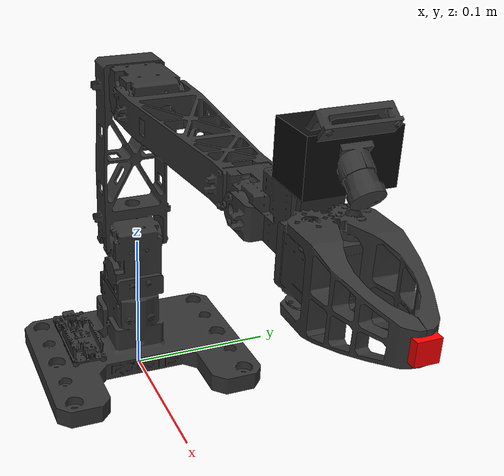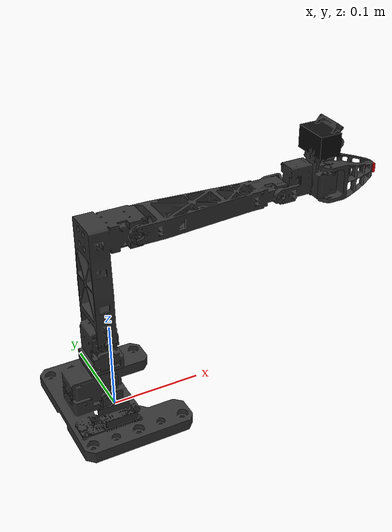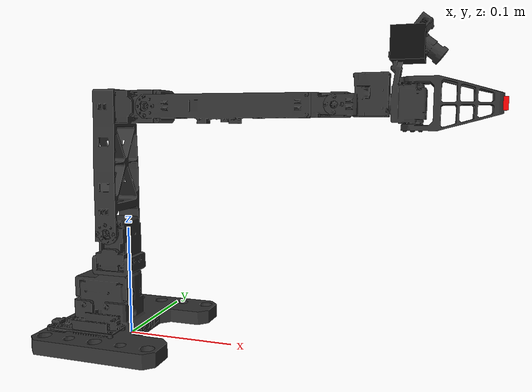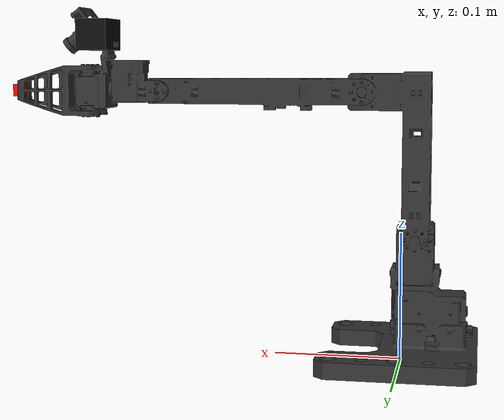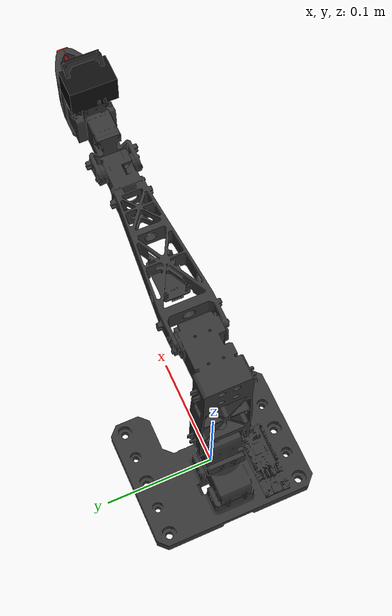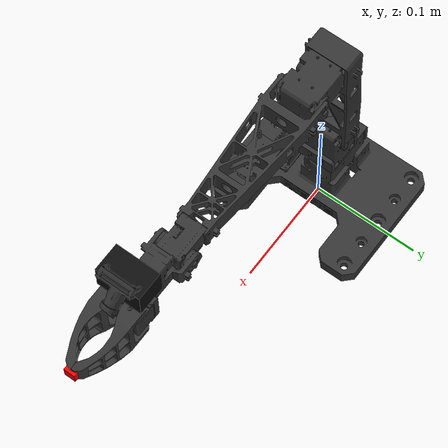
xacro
<?xml version="1.0"?>
<robot name="omx_f_with_wrist_camera" xmlns:xacro="http://www.ros.org/wiki/xacro">
  <!-- Keep the upstream OMX-F model intact and extend it only for simulation. -->
  <xacro:include filename="$(find open_manipulator_description)/urdf/omx_f/omx_f.urdf.xacro"/>

  <joint name="wrist_camera_joint" type="fixed">
    <parent link="link5"/>
    <child link="wrist_camera_link"/>
    <origin xyz="0.025 0 0.045" rpy="0 0 0"/>
  </joint>

  <link name="wrist_camera_link">
    <inertial>
      <mass value="0.02"/>
      <origin xyz="0 0 0" rpy="0 0 0"/>
      <inertia ixx="0.00001" ixy="0" ixz="0" iyy="0.00001" iyz="0" izz="0.00001"/>
    </inertial>
    <visual>
      <geometry><box size="0.025 0.04 0.025"/></geometry>
      <material name="camera_black"><color rgba="0.05 0.05 0.05 1"/></material>
    </visual>
  </link>

  <gazebo reference="wrist_camera_link">
    <sensor name="wrist_camera" type="camera">
      <always_on>true</always_on>
      <update_rate>30</update_rate>
      <topic>/omx_f/wrist_camera/image_raw</topic>
      <camera>
        <horizontal_fov>1.0472</horizontal_fov>
        <image>
          <width>640</width>
          <height>480</height>
          <format>R8G8B8</format>
        </image>
        <clip><near>0.02</near><far>5.0</far></clip>
      </camera>
    </sensor>
  </gazebo>
</robot>

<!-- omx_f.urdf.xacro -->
<robot name="omx_f" xmlns:xacro="http://www.ros.org/wiki/xacro">
  <xacro:arg name="prefix" default="" />
  <xacro:arg name="use_sim" default="false" />
  <xacro:arg name="use_mock_hardware" default="false" />
  <xacro:arg name="mock_sensor_commands" default="false" />
  <xacro:arg name="config_type" default="omx_f" />
  <xacro:arg name="ros2_control_type" default="omx_f" />
  <xacro:arg name="port_name" default="/dev/ttyACM1" />

  <xacro:include filename="$(find open_manipulator_description)/gazebo/omx_f.gazebo.xacro" />

  <xacro:include filename="$(find open_manipulator_description)/urdf/omx_f/omx_f_arm.urdf.xacro" />

  <xacro:include filename="$(find open_manipulator_description)/ros2_control/$(arg ros2_control_type).ros2_control.xacro" />

  <link name="world"/>

  <joint name="$(arg prefix)world_fixed" type="fixed">
    <parent link="world"/>
    <child link="$(arg prefix)link0"/>
    <origin xyz="0.0 0.0 0.0" rpy="0 0 0"/>
  </joint>

  <joint name="$(arg prefix)end_effector_joint" type="fixed">
    <parent link="$(arg prefix)link5"/>
    <child link="$(arg prefix)end_effector_link"/>
    <origin xyz="0.09193 -0.0016 0" rpy="0 0 0"/>
  </joint>

  <link name="$(arg prefix)end_effector_link">
    <visual>
      <origin xyz="0 0 0" rpy="0 0 0"/>
      <geometry>
        <box size="0.01 0.01 0.01" />
      </geometry>
      <material name="red">
        <color rgba="1.0 0.0 0.0 1"/>
      </material>
    </visual>
  </link>

  <xacro:omx_f prefix="$(arg prefix)" use_sim="$(arg use_sim)" />
  <xacro:omx_f_gazebo prefix="$(arg prefix)" />

  <xacro:omx_f_system
    name="OMXFSystem" prefix="$(arg prefix)" use_sim="$(arg use_sim)"
    use_mock_hardware="$(arg use_mock_hardware)"
    mock_sensor_commands="$(arg mock_sensor_commands)"
    port_name="$(arg port_name)"/>

  <gazebo>
    <plugin filename="gz_ros2_control-system" name="gz_ros2_control::GazeboSimROS2ControlPlugin">
      <parameters>$(find open_manipulator_bringup)/config/$(arg config_type)/hardware_controller_manager.yaml</parameters>
    </plugin>
  </gazebo>

</robot>

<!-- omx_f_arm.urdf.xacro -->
<robot xmlns:xacro="http://www.ros.org/wiki/xacro">
   <xacro:macro name="omx_f" params="prefix use_sim:=false">
   <xacro:property name="meshes_file_direction" value="package://open_manipulator_description/meshes/omx_f" />
      <link name="${prefix}link0" >
         <visual>
            <origin xyz="0 0 0" rpy="0 0 0" />
            <geometry>
               <mesh filename="${meshes_file_direction}/follower_01_base.stl" scale="0.001 0.001 0.001" />
            </geometry>
            <material name="grey">
               <color rgba="0.2 0.2 0.2 1" />
            </material>
         </visual>
         <collision>
            <origin xyz="0 0 0" rpy="0 0 0" />
            <geometry>
               <mesh filename="${meshes_file_direction}/follower_01_base.stl" scale="0.001 0.001 0.001" />
            </geometry>
            <material name="grey">
               <color rgba="0.2 0.2 0.2 1" />
            </material>
         </collision>
         <inertial>
            <origin xyz="-1.441250800e-02 -3.149887900e-03 1.927659900e-02" />
            <mass value="2.238905100e-01" />
            <inertia ixx="3.568046100e-04" ixy="-3.297178900e-06" ixz="1.907676700e-05"
            iyy="2.194193200e-04" iyz="1.407164200e-06"
            izz="4.557589900e-04" />
         </inertial>
      </link>
      <joint name="${prefix}joint1" type="revolute">
         <parent link="${prefix}link0" />
         <child link="${prefix}link1" />
         <origin xyz="-0.01125 0 0.034" rpy="0 0 0" />
         <axis xyz="0 0 1" />
         <limit velocity="4.8" effort="1000" lower="${-pi*2.0}" upper="${pi*2.0}" />
         <dynamics damping="0.05" />
      </joint>
      <link name="${prefix}link1" >
         <visual>
            <origin xyz="0 0 0" rpy="0 0 0" />
            <geometry>
               <mesh filename="${meshes_file_direction}/follower_02_base_tilt_Revised.stl" scale="0.001 0.001 0.001" />
            </geometry>
            <material name="grey">
               <color rgba="0.2 0.2 0.2 1" />
            </material>
         </visual>
         <collision>
            <origin xyz="0 0 0" rpy="0 0 0" />
            <geometry>
               <mesh filename="${meshes_file_direction}/follower_02_base_tilt_Revised.stl" scale="0.001 0.001 0.001" />
            </geometry>
            <material name="grey">
               <color rgba="0.2 0.2 0.2 1" />
            </material>
         </collision>
         <inertial>
            <origin xyz="-6.223620500e-06 6.049232000e-04 4.741880300e-02" />
            <mass value="6.598704100e-02" />
            <inertia ixx="2.173166700e-05" ixy="-7.670221200e-09" ixz="6.604697700e-09"
            iyy="2.135151300e-05" iyz="-3.790671700e-07"
            izz="1.165795500e-05" />
         </inertial>
      </link>
      <joint name="${prefix}joint2" type="revolute">
         <parent link="${prefix}link1" />
         <child link="${prefix}link2" />
         <origin xyz="0 0 0.0635" rpy="0 0 0" />
         <axis xyz="0 1 0" />
         <limit velocity="4.8" effort="1000" lower="${-pi*2.0}" upper="${pi*2.0}" />
         <dynamics damping="0.1" />
      </joint>
      <link name="${prefix}link2" >
         <visual>
            <origin xyz="0 0 0" rpy="0 0 0" />
            <geometry>
               <mesh filename="${meshes_file_direction}/follower_03_middle_verticle.stl" scale="0.001 0.001 0.001" />
            </geometry>
            <material name="grey">
               <color rgba="0.2 0.2 0.2 1" />
            </material>
         </visual>
         <collision>
            <origin xyz="0 0 0" rpy="0 0 0" />
            <geometry>
               <mesh filename="${meshes_file_direction}/follower_03_middle_verticle.stl" scale="0.001 0.001 0.001" />
            </geometry>
            <material name="grey">
               <color rgba="0.2 0.2 0.2 1" />
            </material>
         </collision>
         <inertial>
            <origin xyz="1.808991600e-02 2.977875800e-04 9.900545200e-02" />
            <mass value="8.722147100e-02" />
            <inertia ixx="1.030791500e-04" ixy="-9.237869700e-07" ixz="-2.259657800e-05"
            iyy="1.208632700e-04" iyz="-1.937414500e-06"
            izz="4.199367700e-05" />
         </inertial>
      </link>
      <joint name="${prefix}joint3" type="revolute">
         <parent link="${prefix}link2" />
         <child link="${prefix}link3" />
          <origin xyz="0.0415 0 0.11315" rpy="0 0 0" />
         <axis xyz="0 1 0" />
         <limit velocity="4.8" effort="1000" lower="${-pi*2.0}" upper="${pi*2.0}" />
         <dynamics damping="0.1" />
      </joint>
      <link name="${prefix}link3" >
         <visual>
            <origin xyz="0 0 0" rpy="0 0 0" />
            <geometry>
               <mesh filename="${meshes_file_direction}/follower_04_middle_horizontal.stl" scale="0.001 0.001 0.001" />
            </geometry>
            <material name="grey">
               <color rgba="0.2 0.2 0.2 1" />
            </material>
         </visual>
         <collision>
            <origin xyz="0 0 0" rpy="0 0 0" />
            <geometry>
               <mesh filename="${meshes_file_direction}/follower_04_middle_horizontal.stl" scale="0.001 0.001 0.001" />
            </geometry>
            <material name="grey">
               <color rgba="0.2 0.2 0.2 1" />
            </material>
         </collision>
         <inertial>
            <origin xyz="8.739860200e-02 4.131006500e-04 -3.582921000e-03" />
            <mass value="8.375912900e-02" />
            <inertia ixx="1.520310100e-05" ixy="-5.856958300e-07" ixz="-8.201398200e-06"
            iyy="2.260615800e-04" iyz="4.169928000e-07"
            izz="2.306688700e-04" />
         </inertial>
      </link>
      <joint name="${prefix}joint4" type="revolute">
         <parent link="${prefix}link3" />
         <child link="${prefix}link4" />
         <origin xyz="0.162 0 0" rpy="0 0 0" />
         <axis xyz="0 1 0" />
         <limit velocity="4.8" effort="1000" lower="${-pi*2.0}" upper="${pi*2.0}" />
         <dynamics damping="0.1" />
      </joint>
      <link name="${prefix}link4" >
         <visual>
            <origin xyz="0 0 0" rpy="0 0 0" />
            <geometry>
               <mesh filename="${meshes_file_direction}/follower_05_tip.stl" scale="0.001 0.001 0.001" />
            </geometry>
            <material name="grey">
               <color rgba="0.2 0.2 0.2 1" />
            </material>
         </visual>
         <collision>
            <origin xyz="0 0 0" rpy="0 0 0" />
            <geometry>
               <mesh filename="${meshes_file_direction}/follower_05_tip.stl" scale="0.001 0.001 0.001" />
            </geometry>
            <material name="grey">
               <color rgba="0.2 0.2 0.2 1" />
            </material>
         </collision>
         <inertial>
            <origin xyz="2.323498000e-02 6.773537800e-05 5.976131200e-03" />
            <mass value="2.997506300e-02" />
            <inertia ixx="5.099513000e-06" ixy="2.633166800e-08" ixz="-7.760319700e-07"
            iyy="7.099047100e-06" iyz="1.637967900e-09"
            izz="6.311949500e-06" />
         </inertial>
      </link>
      <joint name="${prefix}joint5" type="revolute">
         <parent link="${prefix}link4" />
         <child link="${prefix}link5" />
         <origin xyz="0.0287 0 0" rpy="0 0 0" />
         <axis xyz="1 0 0" />
         <limit velocity="4.8" effort="1000" lower="${-pi*2.0}" upper="${pi*2.0}" />
         <dynamics damping="0.1" />
      </joint>
      <link name="${prefix}link5" >
         <visual>
            <origin xyz="0 0 0" rpy="0 0 0" />
            <geometry>
               <mesh filename="${meshes_file_direction}/follower_06_pan_Revised.stl" scale="0.001 0.001 0.001" />
            </geometry>
            <material name="grey">
               <color rgba="0.2 0.2 0.2 1" />
            </material>
         </visual>
         <collision>
            <origin xyz="0 0 0" rpy="0 0 0" />
            <geometry>
               <mesh filename="${meshes_file_direction}/follower_06_pan_Revised.stl" scale="0.001 0.001 0.001" />
            </geometry>
            <material name="grey">
               <color rgba="0.2 0.2 0.2 1" />
            </material>
         </collision>
         <inertial>
            <origin xyz="2.807240700e-02 2.413594100e-05 1.352891400e-02" />
            <mass value="4.381088700e-02" />
            <inertia ixx="2.369445900e-05" ixy="-2.614252600e-08" ixz="-2.939284100e-06"
            iyy="2.323692400e-05" iyz="7.543040500e-08"
            izz="7.180629100e-06" />
         </inertial>
      </link>
      <joint name="${prefix}gripper_joint_1" type="revolute">
         <parent link="${prefix}link5" />
         <child link="${prefix}link6" />
         <origin xyz="0.0295 0.0075 0" rpy="0 0 0" />
         <axis xyz="0 0 1" />
         <limit velocity="4.8" effort="1000" lower="${-pi*2.0}" upper="${pi*2.0}" />
         <dynamics damping="0.1" />
      </joint>
      <link name="${prefix}link6" >
         <visual>
            <origin xyz="0 0 0" rpy="0 0 0" />
            <geometry>
               <mesh filename="${meshes_file_direction}/follower_07_gripper_motorized.stl" scale="0.001 0.001 0.001" />
            </geometry>
            <material name="grey">
               <color rgba="0.2 0.2 0.2 1" />
            </material>
         </visual>
         <collision>
            <origin xyz="0 0 0" rpy="0 0 0" />
            <geometry>
               <mesh filename="${meshes_file_direction}/follower_07_gripper_motorized.stl" scale="0.001 0.001 0.001" />
            </geometry>
            <material name="grey">
               <color rgba="0.2 0.2 0.2 1" />
            </material>
         </collision>
         <inertial>
            <origin xyz="1.616456500e-02 1.273103200e-03 2.729159800e-04" />
            <mass value="1.209067700e-02" />
            <inertia ixx="2.708328700e-06" ixy="1.397245300e-07" ixz="5.888794300e-08"
            iyy="6.873372800e-06" iyz="1.537070800e-08"
            izz="4.694188100e-06" />
         </inertial>
      </link>
      <joint name="${prefix}gripper_joint_2" type="revolute">
         <parent link="${prefix}link5" />
         <child link="${prefix}link7" />
         <origin xyz="0.0295 -0.0108 0" rpy="0 0 0" />
         <axis xyz="0 0 1" />
         <limit velocity="4.8" effort="1000" lower="${-pi*2.0}" upper="${pi*2.0}" />
         <dynamics damping="0.1" />
         <xacro:unless value="${use_sim}">
            <mimic joint="${prefix}gripper_joint_1" multiplier="-1"/>
         </xacro:unless>
      </joint>
      <link name="${prefix}link7" >
         <visual>
            <origin xyz="0 0 0" rpy="0 0 0" />
            <geometry>
               <mesh filename="${meshes_file_direction}/follower_08_gripper_gear.stl" scale="0.001 0.001 0.001" />
            </geometry>
            <material name="grey">
               <color rgba="0.2 0.2 0.2 1" />
            </material>
         </visual>
         <collision>
            <origin xyz="0 0 0" rpy="0 0 0" />
            <geometry>
               <mesh filename="${meshes_file_direction}/follower_08_gripper_gear.stl" scale="0.001 0.001 0.001" />
            </geometry>
            <material name="grey">
               <color rgba="0.2 0.2 0.2 1" />
            </material>
         </collision>
         <inertial>
            <origin xyz="1.616456500e-02 1.273103200e-03 2.729159800e-04" />
            <mass value="1.209067700e-02" />
            <inertia ixx="2.708328700e-06" ixy="1.397245300e-07" ixz="5.888794300e-08"
            iyy="6.873372800e-06" iyz="1.537070800e-08"
            izz="4.694188100e-06" />
         </inertial>
      </link>
   </xacro:macro>
</robot>
